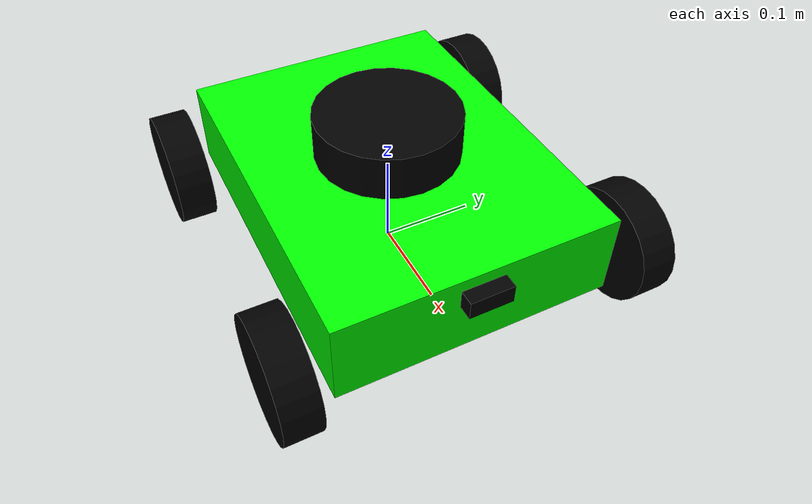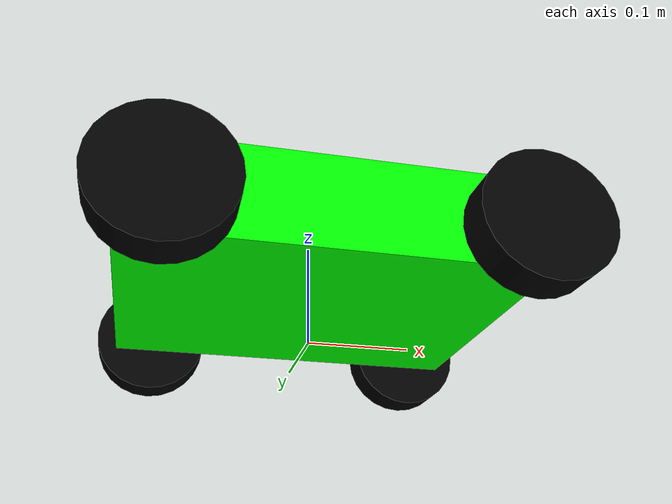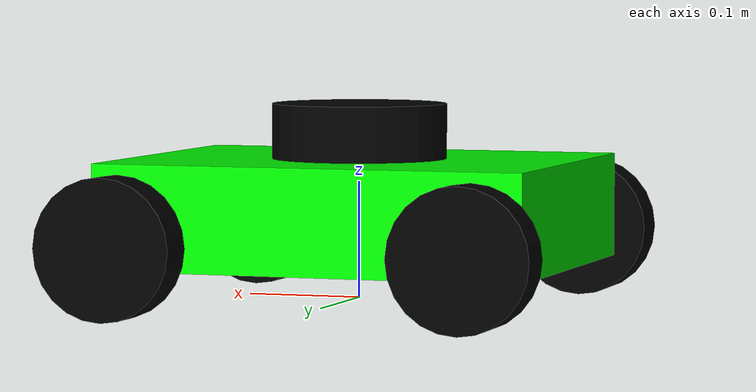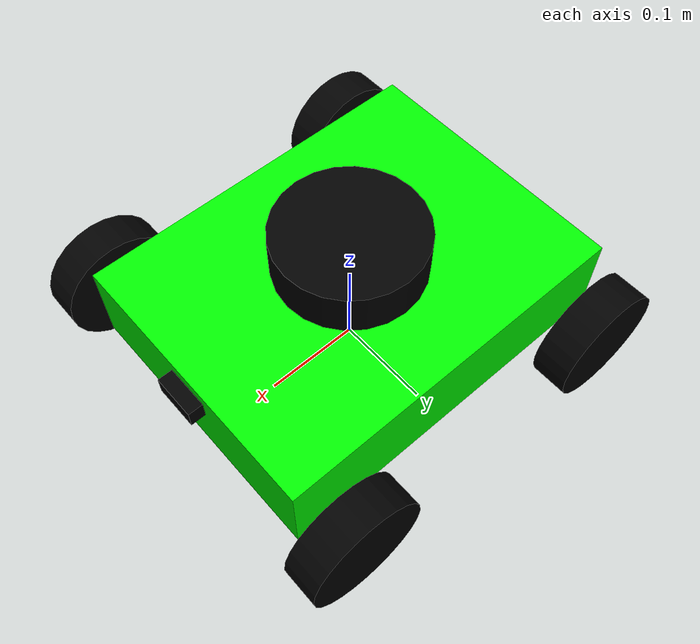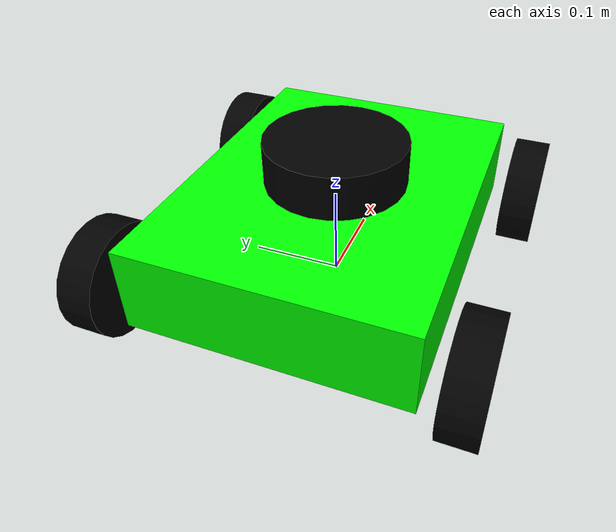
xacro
<?xml version="1.0"?>
<robot name="jetracer" xmlns:xacro="http://www.ros.org/wiki/xacro">

     <xacro:property name="scale" value="1.5"/>
     <xacro:property name="wheel_offset_frac" value="0.25"/>

   <xacro:property name="base_length" value="${0.2499 * scale}"/>
    <xacro:property name="base_width" value="${0.1922 * scale}"/>
    <xacro:property name="base_height" value="${0.06 * scale}"/>
    <xacro:property name="wheel_radius" value="${0.04 * scale}"/>
    <xacro:property name="wheel_length" value="${0.025 * scale}"/>

    <xacro:include filename= "common_properties.xacro"/>
    <xacro:include filename="jetracer_gazebo.xacro"/>
    <xacro:include filename="camera.xacro"/>
    <xacro:include filename="lidar.xacro"/>

    <xacro:macro name="steering_wheel" params="position side sign">

        <xacro:if value="${position=='front'}">
            <link name="${position}_${side}_steer_link">
                <xacro:cylinder_inertial m="0.3" r="${wheel_radius}" l="${wheel_length}" o_xyz="0 0 0" o_rpy="${pi/2.0} 0 0"/>
              </link>
            <joint name="${position}_${side}_steer_joint" type="revolute">
                <parent link="base_link"/>
                <child  link="${position}_${side}_steer_link"/>
                <origin xyz="${
                    base_length/2.4
                } ${
                    sign * base_width * 0.63
                } ${-(base_height*wheel_offset_frac)}" rpy="0 0 0"/>
                <axis  xyz="0 0 1"/>
                <limit lower="-0.785" upper="0.785" effort="40" velocity="4"/>
            </joint>

            <joint name="${position}_${side}_wheel_joint" type="continuous">
                <parent link="${position}_${side}_steer_link"/>
                <child  link="${position}_${side}_wheel"/>
                <origin xyz="0 0 0" rpy="0 0 0"/>
                <axis  xyz="0 1 0"/>
            </joint>
            <link name="${position}_${side}_wheel">
                <visual>
                    <geometry>
                        <cylinder radius="${wheel_radius}" length="${wheel_length}"/>
                    </geometry>
                    <origin xyz="0 0 0" rpy="${pi/2.0} 0 0"/>
                    <material name="black"/>
                </visual>
                <collision>
                    <geometry>
                        <cylinder radius="${wheel_radius}" length="${wheel_length}"/>
                    </geometry>
                    <origin xyz="0 0 0" rpy="${pi/2.0} 0 0"/>

                </collision>
                <xacro:cylinder_inertial m="0.3" r="${wheel_radius}" l="${wheel_length}" o_xyz="0 0 0" o_rpy="${pi/2.0} 0 0"/>
        </link>
        </xacro:if>

        <xacro:if value="${position!='front'}">

            <joint name="${position}_${side}_wheel_joint" type="continuous">
                <parent link="base_link"/>
                <child  link="${position}_${side}_wheel"/>

                <origin xyz="${-0.1*scale} ${sign * base_width * 0.63} ${-(base_height * wheel_offset_frac)}" rpy="0 0 0"/>
                <axis xyz="0 1 0"/>
            </joint>
            <link name="${position}_${side}_wheel">
                <visual>
                    <geometry>
                        <cylinder radius="${wheel_radius}" length="${wheel_length}"/>
                    </geometry>
                    <origin xyz="0 0 0" rpy="${pi/2.0} 0 0"/>
                    <material name="black"/>
                </visual>
                <collision>
                    <geometry>
                        <cylinder radius="${wheel_radius}" length="${wheel_length}"/>
                    </geometry>
                    <origin xyz="0 0 0" rpy="${pi/2.0} 0 0"/>

                </collision>
                <xacro:cylinder_inertial m="0.3" r="${wheel_radius}" l="${wheel_length}" o_xyz="0 0 0" o_rpy="${pi/2.0} 0 0"/>
            </link>
        </xacro:if>
    </xacro:macro>

    <link name="base_footprint" />

    <joint name="base_joint" type="fixed">
        <parent link="base_footprint"/>
        <child link="base_link"/>
        <origin xyz="0 0 ${0.05 * scale}" rpy="0 0 0"/>
    </joint>

    <link name="base_link">
        <visual>
            <geometry>
                <box size="${base_length} ${base_width} ${base_height}" />
            </geometry>
            <origin xyz="0 0 0" rpy="0 0 0" />
            <material name="green" />
        </visual>
        <collision>
            <geometry>
                <box size="${base_length} ${base_width} ${base_height}" />
            </geometry>
            <origin xyz="0 0 0" rpy="0 0 0" />
        </collision>
        <xacro:box_inertial m="1.2" x="${base_length}" y="${base_width}" z="${base_height}" o_xyz="0 0 0" o_rpy="0 0 0"/>

    </link>

    <xacro:steering_wheel position="front" side="left" sign="1"/>

    <xacro:steering_wheel position="front" side="right" sign="-1"/>

    <xacro:steering_wheel position="rear" side="left" sign="1"/>

    <xacro:steering_wheel position="rear" side="right" sign="-1"/>

</robot>

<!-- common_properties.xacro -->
<robot xmlns:xacro="http://www.ros.org/wiki/xacro">

    <material name="grey">
        <color rgba="0.5 0.5 0.5 1" />
    </material>

    <material name="black">
        <color rgba="0.0 0.0 0.0 1.0"/>
    </material>

    <material name="blue">
        <color rgba="0 0 0.5 1" />
    </material>

    <material name="green">
      	<color rgba="0 1 0 1"/>
    </material>
    <material name="red">
        <color rgba="1 0 0 1" />
    </material>

    <material name="white">
        <color rgba="1 1 1 1" />
    </material>

    <xacro:macro name="box_inertial" params="m x y z o_xyz o_rpy">
        <inertial>
            <mass value="${m}"/>
            <origin xyz="${o_xyz}" rpy="${o_rpy}"/>
            <inertia ixx="${m/12.0*(y*y + z*z)}"
                     ixy="0"
                     ixz="0"
                     iyy="${m/12.0*(x*x + z*z)}"
                     iyz="0"
                     izz="${m/12.0*(x*x + y*y)}"/>
        </inertial>
    </xacro:macro>

    <xacro:macro name="cylinder_inertial" params="m r l o_xyz o_rpy">
        <inertial>
            <mass value="${m}"/>
            <origin xyz="${o_xyz}" rpy="${o_rpy}"/>
            <inertia ixx="${m/12.0*(3*r*r + l*l)}"
                     ixy="0"
                     ixz="0"
                     iyy="${m/12.0*(3*r*r + l*l)}"
                     iyz="0"
                     izz="${m*r*r/2.0}"/>
        </inertial>
    </xacro:macro>

</robot>

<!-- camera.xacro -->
<robot xmlns:xacro="http://www.ros.org/wiki/xacro">

    <link name="camera">
        <visual>
            <geometry>
                <box size="${0.03 * scale} ${0.03 * scale} ${0.013 * scale}"/>
            </geometry>
            <origin xyz="0 0 0" rpy="0 0 0" />
            <material name="black"/>
        </visual>
        <collision>
            <geometry>
                <box size="${0.03 * scale} ${0.03 * scale} ${0.013 * scale}"/>
            </geometry>
            <origin xyz="0 0 0" rpy="0 0 0" />
        </collision>

        <xacro:box_inertial m="${0.1 * scale * scale * scale}" x="${0.03 * scale}" y="${0.03 * scale}" z="${0.013 * scale}" o_xyz="0 0 0" o_rpy="0 0 0"/>
    </link>

    <joint name="camera_joint" type="fixed">
        <parent link="base_link"/>
        <child link="camera"/>

        <origin xyz="${0.12 * scale} 0 ${0.015 * scale}" rpy="0 0 0"/>
    </joint>

    <gazebo reference="camera">
        <sensor name="camera" type="camera">
            <pose>0.12 0 0.015 0 0 0</pose>
                <topic>camera/image_raw</topic>
                <update_rate>30</update_rate>
                <camera>
                <horizontal_fov>1.047</horizontal_fov>
                    <image>
                        <width>640</width>
                        <height>480</height>
                        <format>R8G8B8</format>
                        </image>
                        <clip>
                            <near>0.1</near>
                            <far>15</far>
                        </clip>
                        <noise>
                            <type>gaussian</type>
                            <mean>0.0</mean>
                            <stddev>0.007</stddev>
                        </noise>
                        <optical_frame_id>camera</optical_frame_id>
                        <camera_info_topic>camera/camera_info</camera_info_topic>
                    </camera>
                    <always_on>1</always_on>
                <visualize>true</visualize>
        </sensor>
    </gazebo>
</robot>

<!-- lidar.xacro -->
<robot xmlns:xacro="http://www.ros.org/wiki/xacro">

    <link name="base_scan">
        <visual>
            <geometry>
                <cylinder radius="${0.05 * scale}" length="${0.035 * scale}"/>
            </geometry>
            <origin xyz="0 0 0" rpy="0 0 0"/>
            <material name="black" />
        </visual>
        <collision>
            <geometry>
                <cylinder radius="${0.05 * scale}" length="${0.035 * scale}"/>
            </geometry>
            <origin xyz="0 0 0" rpy="0 0 0"/>
        </collision>

        <xacro:cylinder_inertial m="${0.1 * scale}" r="${0.05 * scale}" l="${0.035 * scale}" o_xyz="0 0 0" o_rpy="0 0 0"/>
    </link>

    <joint name="base_scan_joint" type="fixed">
        <parent link="base_link"/>
        <child link="base_scan"/>

        <origin xyz="0 0 ${base_height/2.5 + 0.02*scale}" rpy="0 0 0"/>
    </joint>

    <gazebo reference="base_scan">
        <sensor name="base_scan" type="gpu_lidar">

            <pose relative_to="base_scan">0 0 ${0.025*scale} 0 0 0</pose>
            <topic>scan</topic>
            <update_rate>10</update_rate>
            <ray>
                <scan>
                    <horizontal>
                        <samples>640</samples>
                        <resolution>1</resolution>
                        <min_angle>-3.14</min_angle>
                        <max_angle>3.14</max_angle>
                    </horizontal>

                </scan>
                <range>
                    <min>0.08</min>
                    <max>15</max>
                    <resolution>0.01</resolution>
                </range>
            </ray>
            <gz_frame_id>base_scan</gz_frame_id>
            <always_on>1</always_on>
            <visualize>true</visualize>
        </sensor>
    </gazebo>
</robot>
